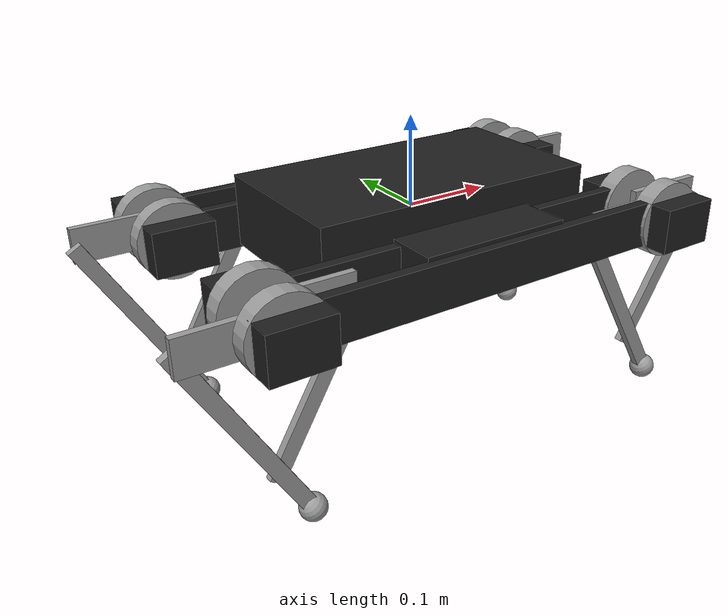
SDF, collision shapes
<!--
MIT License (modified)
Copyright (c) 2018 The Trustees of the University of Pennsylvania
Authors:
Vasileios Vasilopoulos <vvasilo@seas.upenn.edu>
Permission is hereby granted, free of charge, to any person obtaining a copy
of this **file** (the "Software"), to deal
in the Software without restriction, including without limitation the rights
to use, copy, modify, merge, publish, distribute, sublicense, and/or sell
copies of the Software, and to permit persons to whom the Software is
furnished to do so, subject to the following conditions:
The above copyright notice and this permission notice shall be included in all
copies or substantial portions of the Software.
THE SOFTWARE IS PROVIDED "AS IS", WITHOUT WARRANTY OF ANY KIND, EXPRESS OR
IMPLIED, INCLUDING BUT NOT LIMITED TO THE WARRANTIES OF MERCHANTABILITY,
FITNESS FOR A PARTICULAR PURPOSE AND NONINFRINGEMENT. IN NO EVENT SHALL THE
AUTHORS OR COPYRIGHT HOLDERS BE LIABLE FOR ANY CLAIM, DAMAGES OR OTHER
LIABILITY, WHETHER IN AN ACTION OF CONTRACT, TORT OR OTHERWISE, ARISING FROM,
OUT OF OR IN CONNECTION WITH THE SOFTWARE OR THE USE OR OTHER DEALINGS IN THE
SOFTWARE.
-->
<?xml version='1.0'?>

<sdf version='1.6'>
  <model name='minitaur_original'>
    <link name='base_chassis_link_dummy'>
      <pose frame=''>0 0 0 0 -0 0</pose>
      <inertial>
        <pose frame=''>0 -0.001049 -0.005375 0 -0 0</pose>
        <mass>4.956</mass>
        <inertia>
          <ixx>0.0612569</ixx>
          <ixy>-2.18416e-20</ixy>
          <ixz>-5.76859e-20</ixz>
          <iyy>0.175533</iyy>
          <iyz>-6.82484e-05</iyz>
          <izz>0.225818</izz>
        </inertia>
      </inertial>
      <collision name='base_chassis_link_dummy_collision'>
        <pose frame=''>0 0 0 0 -0 0</pose>
        <geometry>
          <box>
            <size>0.33 0.1855 0.08</size>
          </box>
        </geometry>
        <surface>
          <contact>
            <ode/>
          </contact>
          <friction>
            <ode/>
          </friction>
        </surface>
      </collision>
      <collision name='base_chassis_link_dummy_collision_1'>
        <pose frame=''>0 0.1 -0.014 0 -0 0</pose>
        <geometry>
          <box>
            <size>0.17 0.1 0.05</size>
          </box>
        </geometry>
        <surface>
          <contact>
            <ode/>
          </contact>
          <friction>
            <ode/>
          </friction>
        </surface>
      </collision>
      <collision name='base_chassis_link_dummy_collision_2'>
        <pose frame=''>0 -0.1 -0.014 0 -0 0</pose>
        <geometry>
          <box>
            <size>0.17 0.1 0.05</size>
          </box>
        </geometry>
        <surface>
          <contact>
            <ode/>
          </contact>
          <friction>
            <ode/>
          </friction>
        </surface>
      </collision>
      <collision name='base_chassis_link_dummy_fixed_joint_lump__base_chassis_link_collision_3'>
        <pose frame=''>0 0 0 0 -0 0</pose>
        <geometry>
          <box>
            <size>0.33 0.1855 0.08</size>
          </box>
        </geometry>
        <surface>
          <contact>
            <ode/>
          </contact>
          <friction>
            <ode/>
          </friction>
        </surface>
      </collision>
      <collision name='base_chassis_link_dummy_fixed_joint_lump__base_chassis_link_collision_4'>
        <pose frame=''>0 0.1 -0.014 0 -0 0</pose>
        <geometry>
          <box>
            <size>0.17 0.1 0.05</size>
          </box>
        </geometry>
        <surface>
          <contact>
            <ode/>
          </contact>
          <friction>
            <ode/>
          </friction>
        </surface>
      </collision>
      <collision name='base_chassis_link_dummy_fixed_joint_lump__base_chassis_link_collision_5'>
        <pose frame=''>0 -0.1 -0.014 0 -0 0</pose>
        <geometry>
          <box>
            <size>0.17 0.1 0.05</size>
          </box>
        </geometry>
        <surface>
          <contact>
            <ode/>
          </contact>
          <friction>
            <ode/>
          </friction>
        </surface>
      </collision>
      <collision name='base_chassis_link_dummy_fixed_joint_lump__chassis_left_collision_6'>
        <pose frame=''>0.2375 0.0775 -0.0185 0 -0 0</pose>
        <geometry>
          <box>
            <size>0.068 0.032 0.05</size>
          </box>
        </geometry>
        <surface>
          <contact>
            <ode/>
          </contact>
          <friction>
            <ode/>
          </friction>
        </surface>
      </collision>
      <collision name='base_chassis_link_dummy_fixed_joint_lump__chassis_left_collision_7'>
        <pose frame=''>-0.2375 0.0775 -0.0185 0 -0 0</pose>
        <geometry>
          <box>
            <size>0.068 0.032 0.05</size>
          </box>
        </geometry>
        <surface>
          <contact>
            <ode/>
          </contact>
          <friction>
            <ode/>
          </friction>
        </surface>
      </collision>
      <collision name='base_chassis_link_dummy_fixed_joint_lump__chassis_right_collision_8'>
        <pose frame=''>0.2375 -0.0775 -0.0185 0 -0 0</pose>
        <geometry>
          <box>
            <size>0.068 0.032 0.05</size>
          </box>
        </geometry>
        <surface>
          <contact>
            <ode/>
          </contact>
          <friction>
            <ode/>
          </friction>
        </surface>
      </collision>
      <collision name='base_chassis_link_dummy_fixed_joint_lump__chassis_right_collision_9'>
        <pose frame=''>-0.2375 -0.0775 -0.0185 0 -0 0</pose>
        <geometry>
          <box>
            <size>0.068 0.032 0.05</size>
          </box>
        </geometry>
        <surface>
          <contact>
            <ode/>
          </contact>
          <friction>
            <ode/>
          </friction>
        </surface>
      </collision>
      <collision name='base_chassis_link_dummy_fixed_joint_lump__frame1_collision_10'>
        <pose frame=''>0.0175 -0.154 -0.0185 0 -0 0</pose>
        <geometry>
          <box>
            <size>0.468 0.012 0.05</size>
          </box>
        </geometry>
        <surface>
          <contact>
            <ode/>
          </contact>
          <friction>
            <ode/>
          </friction>
        </surface>
      </collision>
      <collision name='base_chassis_link_dummy_fixed_joint_lump__frame2_collision_11'>
        <pose frame=''>0.0175 0.154 -0.0185 0 -0 0</pose>
        <geometry>
          <box>
            <size>0.468 0.012 0.05</size>
          </box>
        </geometry>
        <surface>
          <contact>
            <ode/>
          </contact>
          <friction>
            <ode/>
          </friction>
        </surface>
      </collision>
      <collision name='base_chassis_link_dummy_fixed_joint_lump__frame3_collision_12'>
        <pose frame=''>-0.0175 -0.099 -0.0185 0 -0 0</pose>
        <geometry>
          <box>
            <size>0.468 0.012 0.05</size>
          </box>
        </geometry>
        <surface>
          <contact>
            <ode/>
          </contact>
          <friction>
            <ode/>
          </friction>
        </surface>
      </collision>
      <collision name='base_chassis_link_dummy_fixed_joint_lump__frame4_collision_13'>
        <pose frame=''>-0.0175 0.099 -0.0185 0 -0 0</pose>
        <geometry>
          <box>
            <size>0.468 0.012 0.05</size>
          </box>
        </geometry>
        <surface>
          <contact>
            <ode/>
          </contact>
          <friction>
            <ode/>
          </friction>
        </surface>
      </collision>
      <collision name='base_chassis_link_dummy_fixed_joint_lump__motor_back_leftL_bracket_link_collision_14'>
        <pose frame=''>-0.2375 0.174 -0.0185 0 -0 0</pose>
        <geometry>
          <box>
            <size>0.068 0.032 0.05</size>
          </box>
        </geometry>
        <surface>
          <contact>
            <ode/>
          </contact>
          <friction>
            <ode/>
          </friction>
        </surface>
      </collision>
      <collision name='base_chassis_link_dummy_fixed_joint_lump__motor_back_rightR_bracket_link_collision_15'>
        <pose frame=''>-0.2375 -0.174 -0.0185 0 -0 0</pose>
        <geometry>
          <box>
            <size>0.068 0.032 0.05</size>
          </box>
        </geometry>
        <surface>
          <contact>
            <ode/>
          </contact>
          <friction>
            <ode/>
          </friction>
        </surface>
      </collision>
      <collision name='base_chassis_link_dummy_fixed_joint_lump__motor_front_leftL_bracket_link_collision_16'>
        <pose frame=''>0.2375 0.174 -0.0185 0 -0 0</pose>
        <geometry>
          <box>
            <size>0.068 0.032 0.05</size>
          </box>
        </geometry>
        <surface>
          <contact>
            <ode/>
          </contact>
          <friction>
            <ode/>
          </friction>
        </surface>
      </collision>
      <collision name='base_chassis_link_dummy_fixed_joint_lump__motor_front_rightR_bracket_link_collision_17'>
        <pose frame=''>0.2375 -0.174 -0.0185 0 -0 0</pose>
        <geometry>
          <box>
            <size>0.068 0.032 0.05</size>
          </box>
        </geometry>
        <surface>
          <contact>
            <ode/>
          </contact>
          <friction>
            <ode/>
          </friction>
        </surface>
      </collision>
      <visual name='base_chassis_link_dummy_visual'>
        <pose frame=''>0 0 0 0 -0 0</pose>
        <geometry>
          <box>
            <size>0.33 0.1855 0.08</size>
          </box>
        </geometry>
        <material>
          <script>
            <name>Gazebo/FlatBlack</name>
            <uri>file://media/materials/scripts/gazebo.material</uri>
          </script>
        </material>
      </visual>
      <visual name='base_chassis_link_dummy_visual_1'>
        <pose frame=''>0 0.1 -0.014 0 -0 0</pose>
        <geometry>
          <box>
            <size>0.17 0.1 0.05</size>
          </box>
        </geometry>
        <material>
          <script>
            <name>Gazebo/FlatBlack</name>
            <uri>file://media/materials/scripts/gazebo.material</uri>
          </script>
        </material>
      </visual>
      <visual name='base_chassis_link_dummy_visual_2'>
        <pose frame=''>0 -0.1 -0.014 0 -0 0</pose>
        <geometry>
          <box>
            <size>0.17 0.1 0.05</size>
          </box>
        </geometry>
        <material>
          <script>
            <name>Gazebo/FlatBlack</name>
            <uri>file://media/materials/scripts/gazebo.material</uri>
          </script>
        </material>
      </visual>
      <visual name='base_chassis_link_dummy_fixed_joint_lump__base_chassis_link_visual_3'>
        <pose frame=''>0 0 0 0 -0 0</pose>
        <geometry>
          <box>
            <size>0.33 0.1855 0.08</size>
          </box>
        </geometry>
        <material>
          <script>
            <name>Gazebo/FlatBlack</name>
            <uri>file://media/materials/scripts/gazebo.material</uri>
          </script>
        </material>
      </visual>
      <visual name='base_chassis_link_dummy_fixed_joint_lump__base_chassis_link_visual_4'>
        <pose frame=''>0 0.1 -0.014 0 -0 0</pose>
        <geometry>
          <box>
            <size>0.17 0.1 0.05</size>
          </box>
        </geometry>
        <material>
          <script>
            <name>Gazebo/FlatBlack</name>
            <uri>file://media/materials/scripts/gazebo.material</uri>
          </script>
        </material>
      </visual>
      <visual name='base_chassis_link_dummy_fixed_joint_lump__base_chassis_link_visual_5'>
        <pose frame=''>0 -0.1 -0.014 0 -0 0</pose>
        <geometry>
          <box>
            <size>0.17 0.1 0.05</size>
          </box>
        </geometry>
        <material>
          <script>
            <name>Gazebo/FlatBlack</name>
            <uri>file://media/materials/scripts/gazebo.material</uri>
          </script>
        </material>
      </visual>
      <visual name='base_chassis_link_dummy_fixed_joint_lump__chassis_left_visual_6'>
        <pose frame=''>0.2375 0.0775 -0.0185 0 -0 0</pose>
        <geometry>
          <box>
            <size>0.068 0.032 0.05</size>
          </box>
        </geometry>
        <material>
          <script>
            <name>Gazebo/Black</name>
            <uri>file://media/materials/scripts/gazebo.material</uri>
          </script>
        </material>
      </visual>
      <visual name='base_chassis_link_dummy_fixed_joint_lump__chassis_left_visual_7'>
        <pose frame=''>-0.2375 0.0775 -0.0185 0 -0 0</pose>
        <geometry>
          <box>
            <size>0.068 0.032 0.05</size>
          </box>
        </geometry>
        <material>
          <script>
            <name>Gazebo/Black</name>
            <uri>file://media/materials/scripts/gazebo.material</uri>
          </script>
        </material>
      </visual>
      <visual name='base_chassis_link_dummy_fixed_joint_lump__chassis_right_visual_8'>
        <pose frame=''>0.2375 -0.0775 -0.0185 0 -0 0</pose>
        <geometry>
          <box>
            <size>0.068 0.032 0.05</size>
          </box>
        </geometry>
        <material>
          <script>
            <name>Gazebo/Black</name>
            <uri>file://media/materials/scripts/gazebo.material</uri>
          </script>
        </material>
      </visual>
      <visual name='base_chassis_link_dummy_fixed_joint_lump__chassis_right_visual_9'>
        <pose frame=''>-0.2375 -0.0775 -0.0185 0 -0 0</pose>
        <geometry>
          <box>
            <size>0.068 0.032 0.05</size>
          </box>
        </geometry>
        <material>
          <script>
            <name>Gazebo/Black</name>
            <uri>file://media/materials/scripts/gazebo.material</uri>
          </script>
        </material>
      </visual>
      <visual name='base_chassis_link_dummy_fixed_joint_lump__frame1_visual_10'>
        <pose frame=''>0.0175 -0.154 -0.0185 0 -0 0</pose>
        <geometry>
          <box>
            <size>0.468 0.012 0.05</size>
          </box>
        </geometry>
        <material>
          <script>
            <name>Gazebo/Grey</name>
            <uri>file://media/materials/scripts/gazebo.material</uri>
          </script>
        </material>
      </visual>
      <visual name='base_chassis_link_dummy_fixed_joint_lump__frame2_visual_11'>
        <pose frame=''>0.0175 0.154 -0.0185 0 -0 0</pose>
        <geometry>
          <box>
            <size>0.468 0.012 0.05</size>
          </box>
        </geometry>
        <material>
          <script>
            <name>Gazebo/Grey</name>
            <uri>file://media/materials/scripts/gazebo.material</uri>
          </script>
        </material>
      </visual>
      <visual name='base_chassis_link_dummy_fixed_joint_lump__frame3_visual_12'>
        <pose frame=''>-0.0175 -0.099 -0.0185 0 -0 0</pose>
        <geometry>
          <box>
            <size>0.468 0.012 0.05</size>
          </box>
        </geometry>
        <material>
          <script>
            <name>Gazebo/Grey</name>
            <uri>file://media/materials/scripts/gazebo.material</uri>
          </script>
        </material>
      </visual>
      <visual name='base_chassis_link_dummy_fixed_joint_lump__frame4_visual_13'>
        <pose frame=''>-0.0175 0.099 -0.0185 0 -0 0</pose>
        <geometry>
          <box>
            <size>0.468 0.012 0.05</size>
          </box>
        </geometry>
        <material>
          <script>
            <name>Gazebo/Grey</name>
            <uri>file://media/materials/scripts/gazebo.material</uri>
          </script>
        </material>
      </visual>
      <visual name='base_chassis_link_dummy_fixed_joint_lump__motor_back_leftL_bracket_link_visual_14'>
        <pose frame=''>-0.2375 0.174 -0.0185 0 -0 0</pose>
        <geometry>
          <box>
            <size>0.068 0.032 0.05</size>
          </box>
        </geometry>
        <material>
          <script>
            <name>Gazebo/Black</name>
            <uri>file://media/materials/scripts/gazebo.material</uri>
          </script>
        </material>
      </visual>
      <visual name='base_chassis_link_dummy_fixed_joint_lump__motor_back_rightR_bracket_link_visual_15'>
        <pose frame=''>-0.2375 -0.174 -0.0185 0 -0 0</pose>
        <geometry>
          <box>
            <size>0.068 0.032 0.05</size>
          </box>
        </geometry>
        <material>
          <script>
            <name>Gazebo/Black</name>
            <uri>file://media/materials/scripts/gazebo.material</uri>
          </script>
        </material>
      </visual>
      <visual name='base_chassis_link_dummy_fixed_joint_lump__motor_front_leftL_bracket_link_visual_16'>
        <pose frame=''>0.2375 0.174 -0.0185 0 -0 0</pose>
        <geometry>
          <box>
            <size>0.068 0.032 0.05</size>
          </box>
        </geometry>
        <material>
          <script>
            <name>Gazebo/Black</name>
            <uri>file://media/materials/scripts/gazebo.material</uri>
          </script>
        </material>
      </visual>
      <visual name='base_chassis_link_dummy_fixed_joint_lump__motor_front_rightR_bracket_link_visual_17'>
        <pose frame=''>0.2375 -0.174 -0.0185 0 -0 0</pose>
        <geometry>
          <box>
            <size>0.068 0.032 0.05</size>
          </box>
        </geometry>
        <material>
          <script>
            <name>Gazebo/Black</name>
            <uri>file://media/materials/scripts/gazebo.material</uri>
          </script>
        </material>
      </visual>
      <velocity_decay/>
      <velocity_decay/>
      <velocity_decay/>
      <velocity_decay/>
      <velocity_decay/>
      <velocity_decay/>
      <velocity_decay/>
      <velocity_decay/>
      <velocity_decay/>
      <velocity_decay/>
      <velocity_decay/>
      <gravity>1</gravity>
      <velocity_decay/>
      <self_collide>0</self_collide>
    </link>
    <link name='motor_front_leftR_link'>
      <pose frame=''>0.2375 0.099 -0.0185 1.57075 1.57075 0</pose>
      <inertial>
        <pose frame=''>0 0.0075 -0.002417 0 -0 0</pose>
        <mass>0.3</mass>
        <inertia>
          <ixx>0.000245875</ixx>
          <ixy>0</ixy>
          <ixz>0</ixz>
          <iyy>0.000126333</iyy>
          <iyz>2.71857e-05</iyz>
          <izz>0.000344223</izz>
        </inertia>
      </inertial>
      <collision name='motor_front_leftR_link_collision'>
        <pose frame=''>0 0 0 0 -0 0</pose>
        <geometry>
          <cylinder>
            <length>0.021</length>
            <radius>0.0425</radius>
          </cylinder>
        </geometry>
      </collision>
      <collision name='motor_front_leftR_link_fixed_joint_lump__upper_leg_front_leftR_link_collision_1'>
        <pose frame=''>0 0.045 -0.0145 -1.57075 0 0</pose>
        <geometry>
          <box>
            <size>0.039 0.008 0.1</size>
          </box>
        </geometry>
        <surface>
          <contact>
            <ode/>
          </contact>
          <friction>
            <ode/>
          </friction>
        </surface>
      </collision>
      <visual name='motor_front_leftR_link_visual'>
        <pose frame=''>0 0 0 0 -0 0</pose>
        <geometry>
          <mesh>
            <scale>100 100 100</scale>
            <uri>model://minitaur_constrained/../../meshes/tmotor3.dae</uri>
          </mesh>
        </geometry>
      </visual>
      <visual name='motor_front_leftR_link_fixed_joint_lump__upper_leg_front_leftR_link_visual_1'>
        <pose frame=''>0 0.045 -0.0145 -1.57075 0 0</pose>
        <geometry>
          <box>
            <size>0.039 0.008 0.1</size>
          </box>
        </geometry>
        <material>
          <script>
            <name>Gazebo/Grey</name>
            <uri>file://media/materials/scripts/gazebo.material</uri>
          </script>
        </material>
      </visual>
      <gravity>1</gravity>
      <velocity_decay/>
      <self_collide>0</self_collide>
    </link>
    <joint name='1' type='revolute'>
      <child>motor_front_leftR_link</child>
      <parent>base_chassis_link_dummy</parent>
      <axis>
        <xyz>4.6e-05 -1 0</xyz>
        <limit>
          <lower>-1e+16</lower>
          <upper>1e+16</upper>
        </limit>
        <dynamics>
          <spring_reference>0</spring_reference>
          <spring_stiffness>0</spring_stiffness>
        </dynamics>
        <use_parent_model_frame>1</use_parent_model_frame>
      </axis>
    </joint>
    <link name='lower_leg_front_leftR_link'>
      <pose frame=''>0.332499 0.122002 -0.018496 -3.14159 -0.523343 -3.14159</pose>
      <inertial>
        <pose frame=''>0 0 0.1 0 -0 0</pose>
        <mass>0.05</mass>
        <inertia>
          <ixx>0.00032459</ixx>
          <ixy>0</ixy>
          <ixz>0</ixz>
          <iyy>0.00032637</iyy>
          <iyz>0</iyz>
          <izz>2.178e-06</izz>
        </inertia>
      </inertial>
      <collision name='lower_leg_front_leftR_link_collision'>
        <pose frame=''>0 0 0.1 0 -0 0</pose>
        <geometry>
          <box>
            <size>0.017 0.009 0.2</size>
          </box>
        </geometry>
        <surface>
          <bounce>
            <restitution_coefficient>0</restitution_coefficient>
            <threshold>1e+06</threshold>
          </bounce>
          <friction>
            <torsional>
              <coefficient>0.05</coefficient>
            </torsional>
            <bullet>
              <rolling_friction>0.05</rolling_friction>
            </bullet>
            <ode/>
          </friction>
          <contact>
            <ode>
              <kp>3000</kp>
              <kd>100</kd>
            </ode>
            <bullet>
              <kp>3000</kp>
              <kd>100</kd>
              <split_impulse>1</split_impulse>
              <split_impulse_penetration_threshold>-0.01</split_impulse_penetration_threshold>
            </bullet>
          </contact>
        </surface>
      </collision>
      <visual name='lower_leg_front_leftR_link_visual'>
        <pose frame=''>0 0 0.1 0 -0 0</pose>
        <geometry>
          <box>
            <size>0.017 0.009 0.2</size>
          </box>
        </geometry>
        <material>
          <script>
            <name>Gazebo/Grey</name>
            <uri>file://media/materials/scripts/gazebo.material</uri>
          </script>
        </material>
      </visual>
      <gravity>1</gravity>
      <velocity_decay/>
      <self_collide>0</self_collide>
    </link>
    <joint name='9' type='revolute'>
      <child>lower_leg_front_leftR_link</child>
      <parent>motor_front_leftR_link</parent>
      <axis>
        <xyz>-0 1 -0</xyz>
        <limit>
          <lower>-1e+16</lower>
          <upper>1e+16</upper>
        </limit>
        <dynamics>
          <spring_reference>0</spring_reference>
          <spring_stiffness>0</spring_stiffness>
        </dynamics>
        <use_parent_model_frame>1</use_parent_model_frame>
      </axis>
    </joint>
    <link name='motor_back_leftR_link'>
      <pose frame=''>-0.2375 0.099 -0.0185 1.57075 1.57075 0</pose>
      <inertial>
        <pose frame=''>0 0.0075 -0.002417 0 -0 0</pose>
        <mass>0.3</mass>
        <inertia>
          <ixx>0.000245875</ixx>
          <ixy>0</ixy>
          <ixz>0</ixz>
          <iyy>0.000126333</iyy>
          <iyz>2.71857e-05</iyz>
          <izz>0.000344223</izz>
        </inertia>
      </inertial>
      <collision name='motor_back_leftR_link_collision'>
        <pose frame=''>0 0 0 0 -0 0</pose>
        <geometry>
          <cylinder>
            <length>0.021</length>
            <radius>0.0425</radius>
          </cylinder>
        </geometry>
      </collision>
      <collision name='motor_back_leftR_link_fixed_joint_lump__upper_leg_back_leftR_link_collision_1'>
        <pose frame=''>0 0.045 -0.0145 -1.57075 0 0</pose>
        <geometry>
          <box>
            <size>0.039 0.008 0.1</size>
          </box>
        </geometry>
        <surface>
          <contact>
            <ode/>
          </contact>
          <friction>
            <ode/>
          </friction>
        </surface>
      </collision>
      <visual name='motor_back_leftR_link_visual'>
        <pose frame=''>0 0 0 0 -0 0</pose>
        <geometry>
          <mesh>
            <scale>100 100 100</scale>
            <uri>model://minitaur_constrained/../../meshes/tmotor3.dae</uri>
          </mesh>
        </geometry>
      </visual>
      <visual name='motor_back_leftR_link_fixed_joint_lump__upper_leg_back_leftR_link_visual_1'>
        <pose frame=''>0 0.045 -0.0145 -1.57075 0 0</pose>
        <geometry>
          <box>
            <size>0.039 0.008 0.1</size>
          </box>
        </geometry>
        <material>
          <script>
            <name>Gazebo/Grey</name>
            <uri>file://media/materials/scripts/gazebo.material</uri>
          </script>
        </material>
      </visual>
      <gravity>1</gravity>
      <velocity_decay/>
      <self_collide>0</self_collide>
    </link>
    <joint name='3' type='revolute'>
      <child>motor_back_leftR_link</child>
      <parent>base_chassis_link_dummy</parent>
      <axis>
        <xyz>4.6e-05 -1 0</xyz>
        <limit>
          <lower>-1e+16</lower>
          <upper>1e+16</upper>
        </limit>
        <dynamics>
          <spring_reference>0</spring_reference>
          <spring_stiffness>0</spring_stiffness>
        </dynamics>
        <use_parent_model_frame>1</use_parent_model_frame>
      </axis>
    </joint>
    <link name='lower_leg_back_leftR_link'>
      <pose frame=''>-0.142501 0.122002 -0.018496 -3.14159 -0.523343 -3.14159</pose>
      <inertial>
        <pose frame=''>0 0 0.1 0 -0 0</pose>
        <mass>0.05</mass>
        <inertia>
          <ixx>0.00032459</ixx>
          <ixy>0</ixy>
          <ixz>0</ixz>
          <iyy>0.00032637</iyy>
          <iyz>0</iyz>
          <izz>2.178e-06</izz>
        </inertia>
      </inertial>
      <collision name='lower_leg_back_leftR_link_collision'>
        <pose frame=''>0 0 0.1 0 -0 0</pose>
        <geometry>
          <box>
            <size>0.017 0.009 0.2</size>
          </box>
        </geometry>
        <surface>
          <bounce>
            <restitution_coefficient>0</restitution_coefficient>
            <threshold>1e+06</threshold>
          </bounce>
          <friction>
            <torsional>
              <coefficient>0.05</coefficient>
            </torsional>
            <bullet>
              <rolling_friction>0.05</rolling_friction>
            </bullet>
            <ode/>
          </friction>
          <contact>
            <ode>
              <kp>3000</kp>
              <kd>100</kd>
            </ode>
            <bullet>
              <kp>3000</kp>
              <kd>100</kd>
              <split_impulse>1</split_impulse>
              <split_impulse_penetration_threshold>-0.01</split_impulse_penetration_threshold>
            </bullet>
          </contact>
        </surface>
      </collision>
      <visual name='lower_leg_back_leftR_link_visual'>
        <pose frame=''>0 0 0.1 0 -0 0</pose>
        <geometry>
          <box>
            <size>0.017 0.009 0.2</size>
          </box>
        </geometry>
        <material>
          <script>
            <name>Gazebo/Grey</name>
            <uri>file://media/materials/scripts/gazebo.material</uri>
          </script>
        </material>
      </visual>
      <gravity>1</gravity>
      <velocity_decay/>
      <self_collide>0</self_collide>
    </link>
    <joint name='11' type='revolute'>
      <child>lower_leg_back_leftR_link</child>
      <parent>motor_back_leftR_link</parent>
      <axis>
        <xyz>-0 1 -0</xyz>
        <limit>
          <lower>-1e+16</lower>
          <upper>1e+16</upper>
        </limit>
        <dynamics>
          <spring_reference>0</spring_reference>
          <spring_stiffness>0</spring_stiffness>
        </dynamics>
        <use_parent_model_frame>1</use_parent_model_frame>
      </axis>
    </joint>
    <link name='motor_front_rightL_link'>
      <pose frame=''>0.2375 -0.099 -0.0185 1.57075 1.57075 0</pose>
      <inertial>
        <pose frame=''>0 0.0075 0.002417 0 -0 0</pose>
        <mass>0.3</mass>
        <inertia>
          <ixx>0.000245875</ixx>
          <ixy>0</ixy>
          <ixz>0</ixz>
          <iyy>0.000126333</iyy>
          <iyz>-2.71893e-05</iyz>
          <izz>0.000344223</izz>
        </inertia>
      </inertial>
      <collision name='motor_front_rightL_link_collision'>
        <pose frame=''>0 0 0 0 -0 0</pose>
        <geometry>
          <cylinder>
            <length>0.021</length>
            <radius>0.0425</radius>
          </cylinder>
        </geometry>
      </collision>
      <collision name='motor_front_rightL_link_fixed_joint_lump__upper_leg_front_rightL_link_collision_1'>
        <pose frame=''>0 0.045 0.0145 -1.57075 0 0</pose>
        <geometry>
          <box>
            <size>0.039 0.008 0.1</size>
          </box>
        </geometry>
        <surface>
          <contact>
            <ode/>
          </contact>
          <friction>
            <ode/>
          </friction>
        </surface>
      </collision>
      <visual name='motor_front_rightL_link_visual'>
        <pose frame=''>0 0 0 0 -0 0</pose>
        <geometry>
          <mesh>
            <scale>100 100 100</scale>
            <uri>model://minitaur_constrained/../../meshes/tmotor3.dae</uri>
          </mesh>
        </geometry>
      </visual>
      <visual name='motor_front_rightL_link_fixed_joint_lump__upper_leg_front_rightL_link_visual_1'>
        <pose frame=''>0 0.045 0.0145 -1.57075 0 0</pose>
        <geometry>
          <box>
            <size>0.039 0.008 0.1</size>
          </box>
        </geometry>
        <material>
          <script>
            <name>Gazebo/Grey</name>
            <uri>file://media/materials/scripts/gazebo.material</uri>
          </script>
        </material>
      </visual>
      <gravity>1</gravity>
      <velocity_decay/>
      <self_collide>0</self_collide>
    </link>
    <joint name='4' type='revolute'>
      <child>motor_front_rightL_link</child>
      <parent>base_chassis_link_dummy</parent>
      <axis>
        <xyz>-4.6e-05 1 -0</xyz>
        <limit>
          <lower>-1e+16</lower>
          <upper>1e+16</upper>
        </limit>
        <dynamics>
          <spring_reference>0</spring_reference>
          <spring_stiffness>0</spring_stiffness>
        </dynamics>
        <use_parent_model_frame>1</use_parent_model_frame>
      </axis>
    </joint>
    <link name='lower_leg_front_rightL_link'>
      <pose frame=''>0.332501 -0.121998 -0.018496 -3.14159 -0.523343 -3.14159</pose>
      <inertial>
        <pose frame=''>0 0 0.1 0 -0 0</pose>
        <mass>0.05</mass>
        <inertia>
          <ixx>0.00032459</ixx>
          <ixy>0</ixy>
          <ixz>0</ixz>
          <iyy>0.00032637</iyy>
          <iyz>0</iyz>
          <izz>2.178e-06</izz>
        </inertia>
      </inertial>
      <collision name='lower_leg_front_rightL_link_collision'>
        <pose frame=''>0 0 0.1 0 -0 0</pose>
        <geometry>
          <box>
            <size>0.017 0.009 0.2</size>
          </box>
        </geometry>
        <surface>
          <bounce>
            <restitution_coefficient>0</restitution_coefficient>
            <threshold>1e+06</threshold>
          </bounce>
          <friction>
            <torsional>
              <coefficient>0.05</coefficient>
            </torsional>
            <bullet>
              <rolling_friction>0.05</rolling_friction>
            </bullet>
            <ode/>
          </friction>
          <contact>
            <ode>
              <kp>3000</kp>
              <kd>100</kd>
            </ode>
            <bullet>
              <kp>3000</kp>
              <kd>100</kd>
              <split_impulse>1</split_impulse>
              <split_impulse_penetration_threshold>-0.01</split_impulse_penetration_threshold>
            </bullet>
          </contact>
        </surface>
      </collision>
      <visual name='lower_leg_front_rightL_link_visual'>
        <pose frame=''>0 0 0.1 0 -0 0</pose>
        <geometry>
          <box>
            <size>0.017 0.009 0.2</size>
          </box>
        </geometry>
        <material>
          <script>
            <name>Gazebo/Grey</name>
            <uri>file://media/materials/scripts/gazebo.material</uri>
          </script>
        </material>
      </visual>
      <gravity>1</gravity>
      <velocity_decay/>
      <self_collide>0</self_collide>
    </link>
    <joint name='12' type='revolute'>
      <child>lower_leg_front_rightL_link</child>
      <parent>motor_front_rightL_link</parent>
      <axis>
        <xyz>0 -1 0</xyz>
        <limit>
          <lower>-1e+16</lower>
          <upper>1e+16</upper>
        </limit>
        <dynamics>
          <spring_reference>0</spring_reference>
          <spring_stiffness>0</spring_stiffness>
        </dynamics>
        <use_parent_model_frame>1</use_parent_model_frame>
      </axis>
    </joint>
    <link name='motor_back_rightL_link'>
      <pose frame=''>-0.2375 -0.099 -0.0185 1.57075 1.57075 0</pose>
      <inertial>
        <pose frame=''>0 0.0075 0.002417 0 -0 0</pose>
        <mass>0.3</mass>
        <inertia>
          <ixx>0.000245875</ixx>
          <ixy>0</ixy>
          <ixz>0</ixz>
          <iyy>0.000126333</iyy>
          <iyz>-2.71893e-05</iyz>
          <izz>0.000344223</izz>
        </inertia>
      </inertial>
      <collision name='motor_back_rightL_link_collision'>
        <pose frame=''>0 0 0 0 -0 0</pose>
        <geometry>
          <cylinder>
            <length>0.021</length>
            <radius>0.0425</radius>
          </cylinder>
        </geometry>
      </collision>
      <collision name='motor_back_rightL_link_fixed_joint_lump__upper_leg_back_rightL_link_collision_1'>
        <pose frame=''>0 0.045 0.0145 -1.57075 0 0</pose>
        <geometry>
          <box>
            <size>0.039 0.008 0.1</size>
          </box>
        </geometry>
        <surface>
          <contact>
            <ode/>
          </contact>
          <friction>
            <ode/>
          </friction>
        </surface>
      </collision>
      <visual name='motor_back_rightL_link_visual'>
        <pose frame=''>0 0 0 0 -0 0</pose>
        <geometry>
          <mesh>
            <scale>100 100 100</scale>
            <uri>model://minitaur_constrained/../../meshes/tmotor3.dae</uri>
          </mesh>
        </geometry>
      </visual>
      <visual name='motor_back_rightL_link_fixed_joint_lump__upper_leg_back_rightL_link_visual_1'>
        <pose frame=''>0 0.045 0.0145 -1.57075 0 0</pose>
        <geometry>
          <box>
            <size>0.039 0.008 0.1</size>
          </box>
        </geometry>
        <material>
          <script>
            <name>Gazebo/Grey</name>
            <uri>file://media/materials/scripts/gazebo.material</uri>
          </script>
        </material>
      </visual>
      <gravity>1</gravity>
      <velocity_decay/>
      <self_collide>0</self_collide>
    </link>
    <joint name='6' type='revolute'>
      <child>motor_back_rightL_link</child>
      <parent>base_chassis_link_dummy</parent>
      <axis>
        <xyz>-4.6e-05 1 -0</xyz>
        <limit>
          <lower>-1e+16</lower>
          <upper>1e+16</upper>
        </limit>
        <dynamics>
          <spring_reference>0</spring_reference>
          <spring_stiffness>0</spring_stiffness>
        </dynamics>
        <use_parent_model_frame>1</use_parent_model_frame>
      </axis>
    </joint>
    <link name='lower_leg_back_rightL_link'>
      <pose frame=''>-0.142499 -0.121998 -0.018496 -3.14159 -0.523343 -3.14159</pose>
      <inertial>
        <pose frame=''>0 0 0.1 0 -0 0</pose>
        <mass>0.05</mass>
        <inertia>
          <ixx>0.00032459</ixx>
          <ixy>0</ixy>
          <ixz>0</ixz>
          <iyy>0.00032637</iyy>
          <iyz>0</iyz>
          <izz>2.178e-06</izz>
        </inertia>
      </inertial>
      <collision name='lower_leg_back_rightL_link_collision'>
        <pose frame=''>0 0 0.1 0 -0 0</pose>
        <geometry>
          <box>
            <size>0.017 0.009 0.2</size>
          </box>
        </geometry>
        <surface>
          <bounce>
            <restitution_coefficient>0</restitution_coefficient>
            <threshold>1e+06</threshold>
          </bounce>
          <friction>
            <torsional>
              <coefficient>0.05</coefficient>
            </torsional>
            <bullet>
              <rolling_friction>0.05</rolling_friction>
            </bullet>
            <ode/>
          </friction>
          <contact>
            <ode>
              <kp>3000</kp>
              <kd>100</kd>
            </ode>
            <bullet>
              <kp>3000</kp>
              <kd>100</kd>
              <split_impulse>1</split_impulse>
              <split_impulse_penetration_threshold>-0.01</split_impulse_penetration_threshold>
            </bullet>
          </contact>
        </surface>
      </collision>
      <visual name='lower_leg_back_rightL_link_visual'>
        <pose frame=''>0 0 0.1 0 -0 0</pose>
        <geometry>
          <box>
            <size>0.017 0.009 0.2</size>
          </box>
        </geometry>
        <material>
          <script>
            <name>Gazebo/Grey</name>
            <uri>file://media/materials/scripts/gazebo.material</uri>
          </script>
        </material>
      </visual>
      <gravity>1</gravity>
      <velocity_decay/>
      <self_collide>0</self_collide>
    </link>
    <joint name='14' type='revolute'>
      <child>lower_leg_back_rightL_link</child>
      <parent>motor_back_rightL_link</parent>
      <axis>
        <xyz>0 -1 0</xyz>
        <limit>
          <lower>-1e+16</lower>
          <upper>1e+16</upper>
        </limit>
        <dynamics>
          <spring_reference>0</spring_reference>
          <spring_stiffness>0</spring_stiffness>
        </dynamics>
        <use_parent_model_frame>1</use_parent_model_frame>
      </axis>
    </joint>
    <link name='motor_back_leftL_link'>
      <pose frame=''>-0.2375 0.154 -0.0185 1.57075 -1.57075 0</pose>
      <inertial>
        <pose frame=''>0 0.0075 0.002417 0 -0 0</pose>
        <mass>0.3</mass>
        <inertia>
          <ixx>0.000245875</ixx>
          <ixy>0</ixy>
          <ixz>0</ixz>
          <iyy>0.000126333</iyy>
          <iyz>-2.71893e-05</iyz>
          <izz>0.000344223</izz>
        </inertia>
      </inertial>
      <collision name='motor_back_leftL_link_collision'>
        <pose frame=''>0 0 0 0 -0 0</pose>
        <geometry>
          <cylinder>
            <length>0.021</length>
            <radius>0.0425</radius>
          </cylinder>
        </geometry>
      </collision>
      <collision name='motor_back_leftL_link_fixed_joint_lump__upper_leg_back_leftL_link_collision_1'>
        <pose frame=''>0 0.045 0.0145 -1.57075 0 0</pose>
        <geometry>
          <box>
            <size>0.039 0.008 0.1</size>
          </box>
        </geometry>
        <surface>
          <contact>
            <ode/>
          </contact>
          <friction>
            <ode/>
          </friction>
        </surface>
      </collision>
      <visual name='motor_back_leftL_link_visual'>
        <pose frame=''>0 0 0 0 -0 0</pose>
        <geometry>
          <mesh>
            <scale>100 100 100</scale>
            <uri>model://minitaur_constrained/../../meshes/tmotor3.dae</uri>
          </mesh>
        </geometry>
      </visual>
      <visual name='motor_back_leftL_link_fixed_joint_lump__upper_leg_back_leftL_link_visual_1'>
        <pose frame=''>0 0.045 0.0145 -1.57075 0 0</pose>
        <geometry>
          <box>
            <size>0.039 0.008 0.1</size>
          </box>
        </geometry>
        <material>
          <script>
            <name>Gazebo/Grey</name>
            <uri>file://media/materials/scripts/gazebo.material</uri>
          </script>
        </material>
      </visual>
      <gravity>1</gravity>
      <velocity_decay/>
      <self_collide>0</self_collide>
    </link>
    <joint name='2' type='revolute'>
      <child>motor_back_leftL_link</child>
      <parent>base_chassis_link_dummy</parent>
      <axis>
        <xyz>4.6e-05 1 -0</xyz>
        <limit>
          <lower>-1e+16</lower>
          <upper>1e+16</upper>
        </limit>
        <dynamics>
          <spring_reference>0</spring_reference>
          <spring_stiffness>0</spring_stiffness>
        </dynamics>
        <use_parent_model_frame>1</use_parent_model_frame>
      </axis>
    </joint>
    <link name='lower_leg_back_leftL_link'>
      <pose frame=''>-0.332501 0.131002 -0.018496 -3.14159 0.523343 3.14159</pose>
      <inertial>
        <pose frame=''>0 0 0.144667 0 -0 0</pose>
        <mass>0.06</mass>
        <inertia>
          <ixx>0.000477723</ixx>
          <ixy>0</ixy>
          <ixz>0</ixz>
          <iyy>0.000479503</iyy>
          <iyz>0</iyz>
          <izz>2.7178e-05</izz>
        </inertia>
      </inertial>
      <collision name='lower_leg_back_leftL_link_collision'>
        <pose frame=''>0 0 0.124 0 -0 0</pose>
        <geometry>
          <box>
            <size>0.017 0.009 0.248</size>
          </box>
        </geometry>
        <surface>
          <bounce>
            <restitution_coefficient>0</restitution_coefficient>
            <threshold>1e+06</threshold>
          </bounce>
          <friction>
            <torsional>
              <coefficient>0.05</coefficient>
            </torsional>
            <bullet>
              <rolling_friction>0.05</rolling_friction>
            </bullet>
            <ode/>
          </friction>
          <contact>
            <ode>
              <kp>3000</kp>
              <kd>100</kd>
            </ode>
            <bullet>
              <kp>3000</kp>
              <kd>100</kd>
              <split_impulse>1</split_impulse>
              <split_impulse_penetration_threshold>-0.01</split_impulse_penetration_threshold>
            </bullet>
          </contact>
        </surface>
      </collision>
      <collision name='lower_leg_back_leftL_link_fixed_joint_lump__toe2_collision_1'>
        <pose frame=''>0 0 0.248 0 -0 0</pose>
        <geometry>
          <sphere>
            <radius>0.015</radius>
          </sphere>
        </geometry>
        <surface>
          <bounce>
            <restitution_coefficient>0</restitution_coefficient>
            <threshold>1e+06</threshold>
          </bounce>
          <friction>
            <torsional>
              <coefficient>0.3</coefficient>
            </torsional>
            <ode>
              <mu2>0.7</mu2>
            </ode>
            <bullet>
              <rolling_friction>0.3</rolling_friction>
              <friction2>0.7</friction2>
            </bullet>
          </friction>
          <contact>
            <ode>
              <kp>30000</kp>
              <kd>1000</kd>
            </ode>
            <bullet>
              <kp>30000</kp>
              <kd>1000</kd>
              <split_impulse>1</split_impulse>
              <split_impulse_penetration_threshold>-0.01</split_impulse_penetration_threshold>
            </bullet>
          </contact>
        </surface>
      </collision>
      <visual name='lower_leg_back_leftL_link_visual'>
        <pose frame=''>0 0 0.124 0 -0 0</pose>
        <geometry>
          <box>
            <size>0.017 0.009 0.248</size>
          </box>
        </geometry>
        <material>
          <script>
            <name>Gazebo/Grey</name>
            <uri>file://media/materials/scripts/gazebo.material</uri>
          </script>
        </material>
      </visual>
      <visual name='lower_leg_back_leftL_link_fixed_joint_lump__toe2_visual_1'>
        <pose frame=''>0 0 0.248 0 -0 0</pose>
        <geometry>
          <sphere>
            <radius>0.015</radius>
          </sphere>
        </geometry>
        <material>
          <script>
            <name>Gazebo/Black</name>
            <uri>file://media/materials/scripts/gazebo.material</uri>
          </script>
        </material>
      </visual>
      <velocity_decay/>
      <gravity>1</gravity>
      <velocity_decay/>
      <self_collide>0</self_collide>
    </link>
    <joint name='10' type='revolute'>
      <child>lower_leg_back_leftL_link</child>
      <parent>motor_back_leftL_link</parent>
      <axis>
        <xyz>-0 -1 0</xyz>
        <limit>
          <lower>-1e+16</lower>
          <upper>1e+16</upper>
        </limit>
        <dynamics>
          <spring_reference>0</spring_reference>
          <spring_stiffness>0</spring_stiffness>
        </dynamics>
        <use_parent_model_frame>1</use_parent_model_frame>
      </axis>
    </joint>
    <link name='motor_back_rightR_link'>
      <pose frame=''>-0.2375 -0.154 -0.0185 1.57075 -1.57075 0</pose>
      <inertial>
        <pose frame=''>0 0.0075 -0.002417 0 -0 0</pose>
        <mass>0.3</mass>
        <inertia>
          <ixx>0.000245875</ixx>
          <ixy>0</ixy>
          <ixz>0</ixz>
          <iyy>0.000126333</iyy>
          <iyz>2.71857e-05</iyz>
          <izz>0.000344223</izz>
        </inertia>
      </inertial>
      <collision name='motor_back_rightR_link_collision'>
        <pose frame=''>0 0 0 0 -0 0</pose>
        <geometry>
          <cylinder>
            <length>0.021</length>
            <radius>0.0425</radius>
          </cylinder>
        </geometry>
      </collision>
      <collision name='motor_back_rightR_link_fixed_joint_lump__upper_leg_back_rightR_link_collision_1'>
        <pose frame=''>0 0.045 -0.0145 -1.57075 0 0</pose>
        <geometry>
          <box>
            <size>0.039 0.008 0.1</size>
          </box>
        </geometry>
        <surface>
          <contact>
            <ode/>
          </contact>
          <friction>
            <ode/>
          </friction>
        </surface>
      </collision>
      <visual name='motor_back_rightR_link_visual'>
        <pose frame=''>0 0 0 0 -0 0</pose>
        <geometry>
          <mesh>
            <scale>100 100 100</scale>
            <uri>model://minitaur_constrained/../../meshes/tmotor3.dae</uri>
          </mesh>
        </geometry>
      </visual>
      <visual name='motor_back_rightR_link_fixed_joint_lump__upper_leg_back_rightR_link_visual_1'>
        <pose frame=''>0 0.045 -0.0145 -1.57075 0 0</pose>
        <geometry>
          <box>
            <size>0.039 0.008 0.1</size>
          </box>
        </geometry>
        <material>
          <script>
            <name>Gazebo/Grey</name>
            <uri>file://media/materials/scripts/gazebo.material</uri>
          </script>
        </material>
      </visual>
      <gravity>1</gravity>
      <velocity_decay/>
      <self_collide>0</self_collide>
    </link>
    <joint name='7' type='revolute'>
      <child>motor_back_rightR_link</child>
      <parent>base_chassis_link_dummy</parent>
      <axis>
        <xyz>-4.6e-05 -1 0</xyz>
        <limit>
          <lower>-1e+16</lower>
          <upper>1e+16</upper>
        </limit>
        <dynamics>
          <spring_reference>0</spring_reference>
          <spring_stiffness>0</spring_stiffness>
        </dynamics>
        <use_parent_model_frame>1</use_parent_model_frame>
      </axis>
    </joint>
    <link name='lower_leg_back_rightR_link'>
      <pose frame=''>-0.332499 -0.130998 -0.018496 -3.14159 0.523343 3.14159</pose>
      <inertial>
        <pose frame=''>0 0 0.144667 0 -0 0</pose>
        <mass>0.06</mass>
        <inertia>
          <ixx>0.000477723</ixx>
          <ixy>0</ixy>
          <ixz>0</ixz>
          <iyy>0.000479503</iyy>
          <iyz>0</iyz>
          <izz>2.7178e-05</izz>
        </inertia>
      </inertial>
      <collision name='lower_leg_back_rightR_link_collision'>
        <pose frame=''>0 0 0.124 0 -0 0</pose>
        <geometry>
          <box>
            <size>0.017 0.009 0.248</size>
          </box>
        </geometry>
        <surface>
          <bounce>
            <restitution_coefficient>0</restitution_coefficient>
            <threshold>1e+06</threshold>
          </bounce>
          <friction>
            <torsional>
              <coefficient>0.05</coefficient>
            </torsional>
            <bullet>
              <rolling_friction>0.05</rolling_friction>
            </bullet>
            <ode/>
          </friction>
          <contact>
            <ode>
              <kp>3000</kp>
              <kd>100</kd>
            </ode>
            <bullet>
              <kp>3000</kp>
              <kd>100</kd>
              <split_impulse>1</split_impulse>
              <split_impulse_penetration_threshold>-0.01</split_impulse_penetration_threshold>
            </bullet>
          </contact>
        </surface>
      </collision>
      <collision name='lower_leg_back_rightR_link_fixed_joint_lump__toe7_collision_1'>
        <pose frame=''>0 0 0.248 0 -0 0</pose>
        <geometry>
          <sphere>
            <radius>0.015</radius>
          </sphere>
        </geometry>
        <surface>
          <bounce>
            <restitution_coefficient>0</restitution_coefficient>
            <threshold>1e+06</threshold>
          </bounce>
          <friction>
            <torsional>
              <coefficient>0.3</coefficient>
            </torsional>
            <ode>
              <mu2>0.7</mu2>
            </ode>
            <bullet>
              <rolling_friction>0.3</rolling_friction>
              <friction2>0.7</friction2>
            </bullet>
          </friction>
          <contact>
            <ode>
              <kp>30000</kp>
              <kd>1000</kd>
            </ode>
            <bullet>
              <kp>30000</kp>
              <kd>1000</kd>
              <split_impulse>1</split_impulse>
              <split_impulse_penetration_threshold>-0.01</split_impulse_penetration_threshold>
            </bullet>
          </contact>
        </surface>
      </collision>
      <visual name='lower_leg_back_rightR_link_visual'>
        <pose frame=''>0 0 0.124 0 -0 0</pose>
        <geometry>
          <box>
            <size>0.017 0.009 0.248</size>
          </box>
        </geometry>
        <material>
          <script>
            <name>Gazebo/Grey</name>
            <uri>file://media/materials/scripts/gazebo.material</uri>
          </script>
        </material>
      </visual>
      <visual name='lower_leg_back_rightR_link_fixed_joint_lump__toe7_visual_1'>
        <pose frame=''>0 0 0.248 0 -0 0</pose>
        <geometry>
          <sphere>
            <radius>0.015</radius>
          </sphere>
        </geometry>
        <material>
          <script>
            <name>Gazebo/Black</name>
            <uri>file://media/materials/scripts/gazebo.material</uri>
          </script>
        </material>
      </visual>
      <velocity_decay/>
      <gravity>1</gravity>
      <velocity_decay/>
      <self_collide>0</self_collide>
    </link>
    <joint name='15' type='revolute'>
      <child>lower_leg_back_rightR_link</child>
      <parent>motor_back_rightR_link</parent>
      <axis>
        <xyz>0 1 -0</xyz>
        <limit>
          <lower>-1e+16</lower>
          <upper>1e+16</upper>
        </limit>
        <dynamics>
          <spring_reference>0</spring_reference>
          <spring_stiffness>0</spring_stiffness>
        </dynamics>
        <use_parent_model_frame>1</use_parent_model_frame>
      </axis>
    </joint>
    <link name='motor_front_leftL_link'>
      <pose frame=''>0.2375 0.154 -0.0185 1.57075 -1.57075 0</pose>
      <inertial>
        <pose frame=''>0 0.0075 0.002417 0 -0 0</pose>
        <mass>0.3</mass>
        <inertia>
          <ixx>0.000245875</ixx>
          <ixy>0</ixy>
          <ixz>0</ixz>
          <iyy>0.000126333</iyy>
          <iyz>-2.71893e-05</iyz>
          <izz>0.000344223</izz>
        </inertia>
      </inertial>
      <collision name='motor_front_leftL_link_collision'>
        <pose frame=''>0 0 0 0 -0 0</pose>
        <geometry>
          <cylinder>
            <length>0.021</length>
            <radius>0.0425</radius>
          </cylinder>
        </geometry>
      </collision>
      <collision name='motor_front_leftL_link_fixed_joint_lump__upper_leg_front_leftL_link_collision_1'>
        <pose frame=''>0 0.045 0.0145 -1.57075 0 0</pose>
        <geometry>
          <box>
            <size>0.039 0.008 0.1</size>
          </box>
        </geometry>
        <surface>
          <contact>
            <ode/>
          </contact>
          <friction>
            <ode/>
          </friction>
        </surface>
      </collision>
      <visual name='motor_front_leftL_link_visual'>
        <pose frame=''>0 0 0 0 -0 0</pose>
        <geometry>
          <mesh>
            <scale>100 100 100</scale>
            <uri>model://minitaur_constrained/../../meshes/tmotor3.dae</uri>
          </mesh>
        </geometry>
      </visual>
      <visual name='motor_front_leftL_link_fixed_joint_lump__upper_leg_front_leftL_link_visual_1'>
        <pose frame=''>0 0.045 0.0145 -1.57075 0 0</pose>
        <geometry>
          <box>
            <size>0.039 0.008 0.1</size>
          </box>
        </geometry>
        <material>
          <script>
            <name>Gazebo/Grey</name>
            <uri>file://media/materials/scripts/gazebo.material</uri>
          </script>
        </material>
      </visual>
      <gravity>1</gravity>
      <velocity_decay/>
      <self_collide>0</self_collide>
    </link>
    <joint name='0' type='revolute'>
      <child>motor_front_leftL_link</child>
      <parent>base_chassis_link_dummy</parent>
      <axis>
        <xyz>4.6e-05 1 -0</xyz>
        <limit>
          <lower>-1e+16</lower>
          <upper>1e+16</upper>
        </limit>
        <dynamics>
          <spring_reference>0</spring_reference>
          <spring_stiffness>0</spring_stiffness>
        </dynamics>
        <use_parent_model_frame>1</use_parent_model_frame>
      </axis>
    </joint>
    <link name='lower_leg_front_leftL_link'>
      <pose frame=''>0.142499 0.131002 -0.018496 -3.14159 0.523343 3.14159</pose>
      <inertial>
        <pose frame=''>0 0 0.144667 0 -0 0</pose>
        <mass>0.06</mass>
        <inertia>
          <ixx>0.000477723</ixx>
          <ixy>0</ixy>
          <ixz>0</ixz>
          <iyy>0.000479503</iyy>
          <iyz>0</iyz>
          <izz>2.7178e-05</izz>
        </inertia>
      </inertial>
      <collision name='lower_leg_front_leftL_link_collision'>
        <pose frame=''>0 0 0.124 0 -0 0</pose>
        <geometry>
          <box>
            <size>0.017 0.009 0.248</size>
          </box>
        </geometry>
        <surface>
          <bounce>
            <restitution_coefficient>0</restitution_coefficient>
            <threshold>1e+06</threshold>
          </bounce>
          <friction>
            <torsional>
              <coefficient>0.05</coefficient>
            </torsional>
            <bullet>
              <rolling_friction>0.05</rolling_friction>
            </bullet>
            <ode/>
          </friction>
          <contact>
            <ode>
              <kp>3000</kp>
              <kd>100</kd>
            </ode>
            <bullet>
              <kp>3000</kp>
              <kd>100</kd>
              <split_impulse>1</split_impulse>
              <split_impulse_penetration_threshold>-0.01</split_impulse_penetration_threshold>
            </bullet>
          </contact>
        </surface>
      </collision>
      <collision name='lower_leg_front_leftL_link_fixed_joint_lump__toe0_collision_1'>
        <pose frame=''>0 0 0.248 0 -0 0</pose>
        <geometry>
          <sphere>
            <radius>0.015</radius>
          </sphere>
        </geometry>
        <surface>
          <bounce>
            <restitution_coefficient>0</restitution_coefficient>
            <threshold>1e+06</threshold>
          </bounce>
          <friction>
            <torsional>
              <coefficient>0.3</coefficient>
            </torsional>
            <ode>
              <mu2>0.7</mu2>
            </ode>
            <bullet>
              <rolling_friction>0.3</rolling_friction>
              <friction2>0.7</friction2>
            </bullet>
          </friction>
          <contact>
            <ode>
              <kp>30000</kp>
              <kd>1000</kd>
            </ode>
            <bullet>
              <kp>30000</kp>
              <kd>1000</kd>
              <split_impulse>1</split_impulse>
              <split_impulse_penetration_threshold>-0.01</split_impulse_penetration_threshold>
            </bullet>
          </contact>
        </surface>
      </collision>
      <visual name='lower_leg_front_leftL_link_visual'>
        <pose frame=''>0 0 0.124 0 -0 0</pose>
        <geometry>
          <box>
            <size>0.017 0.009 0.248</size>
          </box>
        </geometry>
        <material>
          <script>
            <name>Gazebo/Grey</name>
            <uri>file://media/materials/scripts/gazebo.material</uri>
          </script>
        </material>
      </visual>
      <visual name='lower_leg_front_leftL_link_fixed_joint_lump__toe0_visual_1'>
        <pose frame=''>0 0 0.248 0 -0 0</pose>
        <geometry>
          <sphere>
            <radius>0.015</radius>
          </sphere>
        </geometry>
        <material>
          <script>
            <name>Gazebo/Black</name>
            <uri>file://media/materials/scripts/gazebo.material</uri>
          </script>
        </material>
      </visual>
      <velocity_decay/>
      <gravity>1</gravity>
      <velocity_decay/>
      <self_collide>0</self_collide>
    </link>
    <joint name='8' type='revolute'>
      <child>lower_leg_front_leftL_link</child>
      <parent>motor_front_leftL_link</parent>
      <axis>
        <xyz>-0 -1 0</xyz>
        <limit>
          <lower>-1e+16</lower>
          <upper>1e+16</upper>
        </limit>
        <dynamics>
          <spring_reference>0</spring_reference>
          <spring_stiffness>0</spring_stiffness>
        </dynamics>
        <use_parent_model_frame>1</use_parent_model_frame>
      </axis>
    </joint>
    <link name='motor_front_rightR_link'>
      <pose frame=''>0.2375 -0.154 -0.0185 1.57075 -1.57075 0</pose>
      <inertial>
        <pose frame=''>0 0.0075 -0.002417 0 -0 0</pose>
        <mass>0.3</mass>
        <inertia>
          <ixx>0.000245875</ixx>
          <ixy>0</ixy>
          <ixz>0</ixz>
          <iyy>0.000126333</iyy>
          <iyz>2.71857e-05</iyz>
          <izz>0.000344223</izz>
        </inertia>
      </inertial>
      <collision name='motor_front_rightR_link_collision'>
        <pose frame=''>0 0 0 0 -0 0</pose>
        <geometry>
          <cylinder>
            <length>0.021</length>
            <radius>0.0425</radius>
          </cylinder>
        </geometry>
      </collision>
      <collision name='motor_front_rightR_link_fixed_joint_lump__upper_leg_front_rightR_link_collision_1'>
        <pose frame=''>0 0.045 -0.0145 -1.57075 0 0</pose>
        <geometry>
          <box>
            <size>0.039 0.008 0.1</size>
          </box>
        </geometry>
        <surface>
          <contact>
            <ode/>
          </contact>
          <friction>
            <ode/>
          </friction>
        </surface>
      </collision>
      <visual name='motor_front_rightR_link_visual'>
        <pose frame=''>0 0 0 0 -0 0</pose>
        <geometry>
          <mesh>
            <scale>100 100 100</scale>
            <uri>model://minitaur_constrained/../../meshes/tmotor3.dae</uri>
          </mesh>
        </geometry>
      </visual>
      <visual name='motor_front_rightR_link_fixed_joint_lump__upper_leg_front_rightR_link_visual_1'>
        <pose frame=''>0 0.045 -0.0145 -1.57075 0 0</pose>
        <geometry>
          <box>
            <size>0.039 0.008 0.1</size>
          </box>
        </geometry>
        <material>
          <script>
            <name>Gazebo/Grey</name>
            <uri>file://media/materials/scripts/gazebo.material</uri>
          </script>
        </material>
      </visual>
      <gravity>1</gravity>
      <velocity_decay/>
      <self_collide>0</self_collide>
    </link>
    <joint name='5' type='revolute'>
      <child>motor_front_rightR_link</child>
      <parent>base_chassis_link_dummy</parent>
      <axis>
        <xyz>-4.6e-05 -1 0</xyz>
        <limit>
          <lower>-1e+16</lower>
          <upper>1e+16</upper>
        </limit>
        <dynamics>
          <spring_reference>0</spring_reference>
          <spring_stiffness>0</spring_stiffness>
        </dynamics>
        <use_parent_model_frame>1</use_parent_model_frame>
      </axis>
    </joint>
    <link name='lower_leg_front_rightR_link'>
      <pose frame=''>0.142501 -0.130998 -0.018496 -3.14159 0.523343 3.14159</pose>
      <inertial>
        <pose frame=''>0 0 0.144667 0 -0 0</pose>
        <mass>0.06</mass>
        <inertia>
          <ixx>0.000477723</ixx>
          <ixy>0</ixy>
          <ixz>0</ixz>
          <iyy>0.000479503</iyy>
          <iyz>0</iyz>
          <izz>2.7178e-05</izz>
        </inertia>
      </inertial>
      <collision name='lower_leg_front_rightR_link_collision'>
        <pose frame=''>0 0 0.124 0 -0 0</pose>
        <geometry>
          <box>
            <size>0.017 0.009 0.248</size>
          </box>
        </geometry>
        <surface>
          <bounce>
            <restitution_coefficient>0</restitution_coefficient>
            <threshold>1e+06</threshold>
          </bounce>
          <friction>
            <torsional>
              <coefficient>0.05</coefficient>
            </torsional>
            <bullet>
              <rolling_friction>0.05</rolling_friction>
            </bullet>
            <ode/>
          </friction>
          <contact>
            <ode>
              <kp>3000</kp>
              <kd>100</kd>
            </ode>
            <bullet>
              <kp>3000</kp>
              <kd>100</kd>
              <split_impulse>1</split_impulse>
              <split_impulse_penetration_threshold>-0.01</split_impulse_penetration_threshold>
            </bullet>
          </contact>
        </surface>
      </collision>
      <collision name='lower_leg_front_rightR_link_fixed_joint_lump__toe5_collision_1'>
        <pose frame=''>0 0 0.248 0 -0 0</pose>
        <geometry>
          <sphere>
            <radius>0.015</radius>
          </sphere>
        </geometry>
        <surface>
          <bounce>
            <restitution_coefficient>0</restitution_coefficient>
            <threshold>1e+06</threshold>
          </bounce>
          <friction>
            <torsional>
              <coefficient>0.3</coefficient>
            </torsional>
            <ode>
              <mu2>0.7</mu2>
            </ode>
            <bullet>
              <rolling_friction>0.3</rolling_friction>
              <friction2>0.7</friction2>
            </bullet>
          </friction>
          <contact>
            <ode>
              <kp>30000</kp>
              <kd>1000</kd>
            </ode>
            <bullet>
              <kp>30000</kp>
              <kd>1000</kd>
              <split_impulse>1</split_impulse>
              <split_impulse_penetration_threshold>-0.01</split_impulse_penetration_threshold>
            </bullet>
          </contact>
        </surface>
      </collision>
      <visual name='lower_leg_front_rightR_link_visual'>
        <pose frame=''>0 0 0.124 0 -0 0</pose>
        <geometry>
          <box>
            <size>0.017 0.009 0.248</size>
          </box>
        </geometry>
        <material>
          <script>
            <name>Gazebo/Grey</name>
            <uri>file://media/materials/scripts/gazebo.material</uri>
          </script>
        </material>
      </visual>
      <visual name='lower_leg_front_rightR_link_fixed_joint_lump__toe5_visual_1'>
        <pose frame=''>0 0 0.248 0 -0 0</pose>
        <geometry>
          <sphere>
            <radius>0.015</radius>
          </sphere>
        </geometry>
        <material>
          <script>
            <name>Gazebo/Black</name>
            <uri>file://media/materials/scripts/gazebo.material</uri>
          </script>
        </material>
      </visual>
      <velocity_decay/>
      <gravity>1</gravity>
      <velocity_decay/>
      <self_collide>0</self_collide>
    </link>
    <joint name='13' type='revolute'>
      <child>lower_leg_front_rightR_link</child>
      <parent>motor_front_rightR_link</parent>
      <axis>
        <xyz>0 1 -0</xyz>
        <limit>
          <lower>-1e+16</lower>
          <upper>1e+16</upper>
        </limit>
        <dynamics>
          <spring_reference>0</spring_reference>
          <spring_stiffness>0</spring_stiffness>
        </dynamics>
        <use_parent_model_frame>1</use_parent_model_frame>
      </axis>
    </joint>
    <static>0</static>
    <plugin name='gazebo_ros_control' filename='libgazebo_ros_control.so'>
      <robotNamespace>/minitaur_original</robotNamespace>
    </plugin>
  </model>
</sdf>
